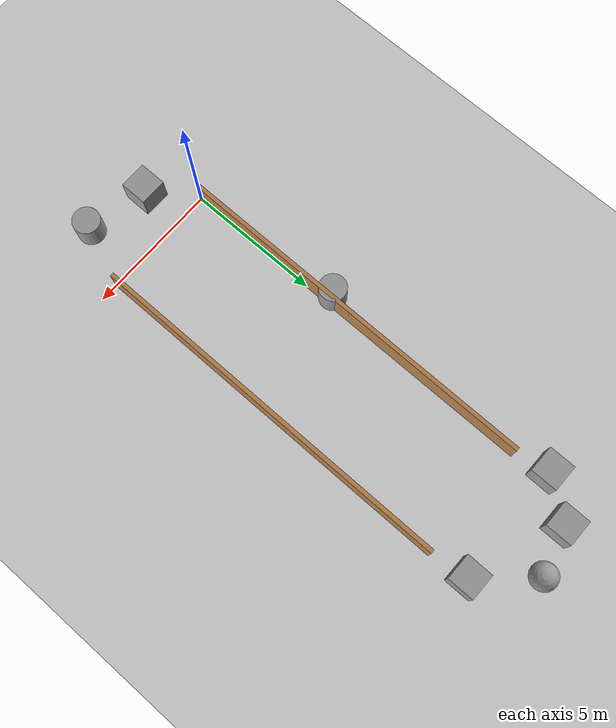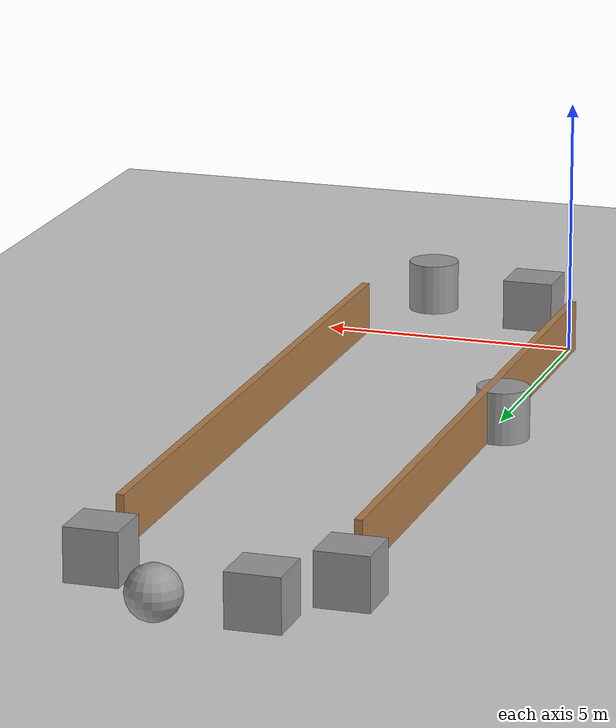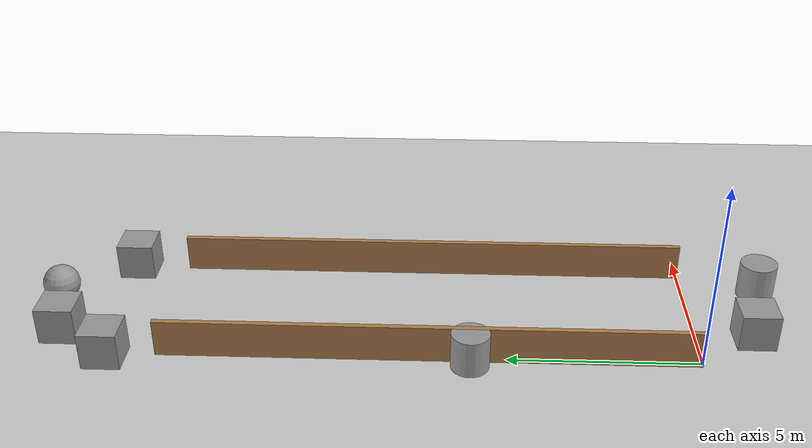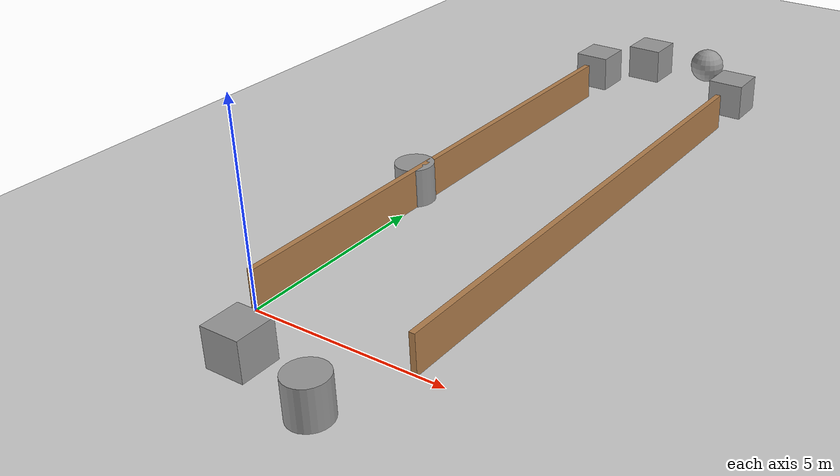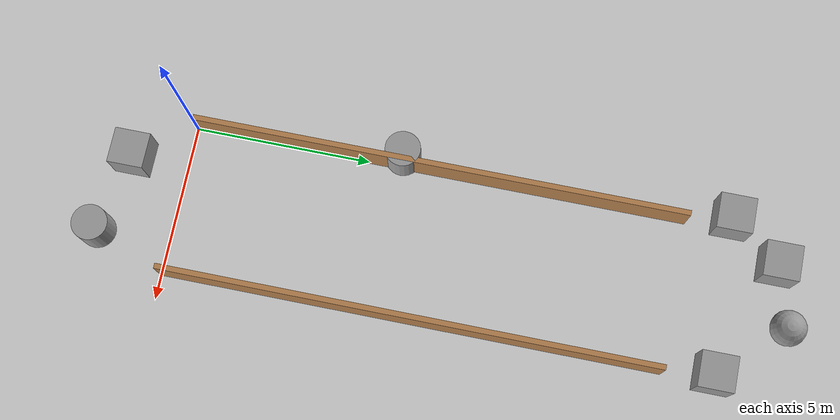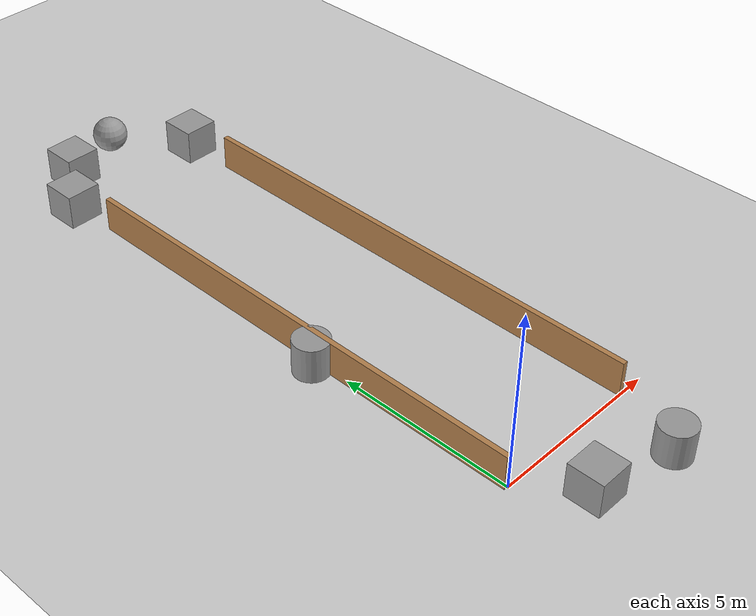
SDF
<sdf version="1.7">
 <world name="default">
  <light name="sun" type="directional">
   <pose>0 0 10 0 -0 0</pose>
   <diffuse>0.8 0.8 0.8 1</diffuse>
   <specular>0.2 0.2 0.2 1</specular>
   <attenuation>
    <range>1000</range>
    <constant>0.9</constant>
    <linear>0.01</linear>
    <quadratic>0.001</quadratic>
   </attenuation>
   <direction>-0.5 0.1 -0.9</direction>
   <spot><inner_angle>0</inner_angle><outer_angle>0</outer_angle><falloff>0</falloff></spot>
  </light>
  <model name="ground_plane">
   <static>1</static>
   <link name="link">
    <collision name="collision">
     <geometry><plane><normal>0 0 1</normal><size>100 100</size></plane></geometry>
     <surface><friction><ode><mu>100</mu><mu2>50</mu2></ode></friction></surface>
    </collision>
    <visual name="visual">
     <cast_shadows>0</cast_shadows>
     <geometry><plane><normal>0 0 1</normal><size>100 100</size></plane></geometry>
     <material>
      <script><uri>file://media/materials/scripts/gazebo.material</uri><name>Gazebo/Grey</name></script>
     </material>
    </visual>
   </link>
  </model>
  <gravity>0 0 -9.8</gravity>
  <magnetic_field>6e-06 2.3e-05 -4.2e-05</magnetic_field>
  <atmosphere type="adiabatic"/>
  <physics type="ode">
   <max_step_size>0.001</max_step_size>
   <real_time_factor>1</real_time_factor>
   <real_time_update_rate>1000</real_time_update_rate>
  </physics>
  <scene><ambient>0.4 0.4 0.4 1</ambient><background>0.7 0.7 0.7 1</background><shadows>1</shadows></scene>
  <spherical_coordinates>
   <surface_model>EARTH_WGS84</surface_model>
   <latitude_deg>0</latitude_deg>
   <longitude_deg>0</longitude_deg>
   <elevation>0</elevation>
   <heading_deg>0</heading_deg>
  </spherical_coordinates>
  <model name="wall">
   <pose>5.78927 7.00637 0 0 -0 0</pose>
   <link name="Wall_3">
    <collision name="Wall_3_Collision">
     <geometry><box><size>14 0.15 1</size></box></geometry>
     <pose>0 0 0.5 0 -0 0</pose>
    </collision>
    <visual name="Wall_3_Visual">
     <pose>0 0 0.5 0 -0 0</pose>
     <geometry><box><size>14 0.15 1</size></box></geometry>
     <material>
      <script><uri>file://media/materials/scripts/gazebo.material</uri><name>Gazebo/Wood</name></script>
      <ambient>1 1 1 1</ambient>
     </material>
     <meta><layer>0</layer></meta>
    </visual>
    <pose>-5.8385 0 0 0 -0 -1.5708</pose>
   </link>
   <static>1</static>
  </model>
  <model name="wall_0">
   <pose>10.0925 6.99402 0 0 -0 0</pose>
   <link name="Wall_3">
    <collision name="Wall_3_Collision">
     <geometry><box><size>14 0.15 1</size></box></geometry>
     <pose>0 0 0.5 0 -0 0</pose>
    </collision>
    <visual name="Wall_3_Visual">
     <pose>0 0 0.5 0 -0 0</pose>
     <geometry><box><size>14 0.15 1</size></box></geometry>
     <material>
      <script><uri>file://media/materials/scripts/gazebo.material</uri><name>Gazebo/Wood</name></script>
      <ambient>1 1 1 1</ambient>
     </material>
     <meta><layer>0</layer></meta>
    </visual>
    <pose>-5.8385 0 0 0 -0 -1.5708</pose>
   </link>
   <static>1</static>
  </model>
  <model name="unit_box">
   <pose>1.15924 -1.51932 0.5 0 -0 0</pose>
   <link name="link">
    <inertial>
     <mass>1</mass>
     <inertia>
      <ixx>0.166667</ixx>
      <ixy>0</ixy>
      <ixz>0</ixz>
      <iyy>0.166667</iyy>
      <iyz>0</iyz>
      <izz>0.166667</izz>
     </inertia>
    </inertial>
    <collision name="collision"><geometry><box><size>1 1 1</size></box></geometry></collision>
    <visual name="visual">
     <geometry><box><size>1 1 1</size></box></geometry>
     <material>
      <script><name>Gazebo/Grey</name><uri>file://media/materials/scripts/gazebo.material</uri></script>
     </material>
    </visual>
   </link>
  </model>
  <model name="unit_cylinder">
   <pose>3.42558 -2.03905 0.499992 -3e-06 3e-06 0</pose>
   <link name="link">
    <inertial>
     <mass>1</mass>
     <inertia><ixx>0.145833</ixx><ixy>0</ixy><ixz>0</ixz><iyy>0.145833</iyy><iyz>0</iyz><izz>0.125</izz></inertia>
    </inertial>
    <collision name="collision">
     <geometry><cylinder><radius>0.5</radius><length>1</length></cylinder></geometry>
    </collision>
    <visual name="visual">
     <geometry><cylinder><radius>0.5</radius><length>1</length></cylinder></geometry>
     <material>
      <script><name>Gazebo/Grey</name><uri>file://media/materials/scripts/gazebo.material</uri></script>
     </material>
    </visual>
   </link>
  </model>
  <model name="unit_box_0">
   <pose>0.761847 16.6543 0.5 0 -0 0</pose>
   <link name="link">
    <inertial>
     <mass>1</mass>
     <inertia>
      <ixx>0.166667</ixx>
      <ixy>0</ixy>
      <ixz>0</ixz>
      <iyy>0.166667</iyy>
      <iyz>0</iyz>
      <izz>0.166667</izz>
     </inertia>
    </inertial>
    <collision name="collision"><geometry><box><size>1 1 1</size></box></geometry></collision>
    <visual name="visual">
     <geometry><box><size>1 1 1</size></box></geometry>
     <material>
      <script><name>Gazebo/Grey</name><uri>file://media/materials/scripts/gazebo.material</uri></script>
     </material>
    </visual>
   </link>
  </model>
  <model name="unit_box_1">
   <pose>-0.309304 15.2329 0.5 -0 -0 -0</pose>
   <link name="link">
    <inertial>
     <mass>1</mass>
     <inertia>
      <ixx>0.166667</ixx>
      <ixy>0</ixy>
      <ixz>0</ixz>
      <iyy>0.166667</iyy>
      <iyz>0</iyz>
      <izz>0.166667</izz>
     </inertia>
    </inertial>
    <collision name="collision"><geometry><box><size>1 1 1</size></box></geometry></collision>
    <visual name="visual">
     <geometry><box><size>1 1 1</size></box></geometry>
     <material>
      <script><name>Gazebo/Grey</name><uri>file://media/materials/scripts/gazebo.material</uri></script>
     </material>
    </visual>
   </link>
  </model>
  <model name="unit_box_2">
   <pose>4.08158 15.3674 0.5 0 -0 0</pose>
   <link name="link">
    <inertial>
     <mass>1</mass>
     <inertia>
      <ixx>0.166667</ixx>
      <ixy>0</ixy>
      <ixz>0</ixz>
      <iyy>0.166667</iyy>
      <iyz>0</iyz>
      <izz>0.166667</izz>
     </inertia>
    </inertial>
    <collision name="collision"><geometry><box><size>1 1 1</size></box></geometry></collision>
    <visual name="visual">
     <geometry><box><size>1 1 1</size></box></geometry>
     <material>
      <script><name>Gazebo/Grey</name><uri>file://media/materials/scripts/gazebo.material</uri></script>
     </material>
    </visual>
   </link>
  </model>
  <model name="unit_sphere">
   <pose>2.47578 17.1477 0.5 0 -0 0</pose>
   <link name="link">
    <inertial>
     <mass>1</mass>
     <inertia><ixx>0.1</ixx><ixy>0</ixy><ixz>0</ixz><iyy>0.1</iyy><iyz>0</iyz><izz>0.1</izz></inertia>
    </inertial>
    <collision name="collision"><geometry><sphere><radius>0.5</radius></sphere></geometry></collision>
    <visual name="visual">
     <geometry><sphere><radius>0.5</radius></sphere></geometry>
     <material>
      <script><name>Gazebo/Grey</name><uri>file://media/materials/scripts/gazebo.material</uri></script>
     </material>
    </visual>
   </link>
  </model>
  <model name="unit_cylinder_0">
   <pose>-0.299158 5.91403 0.499998 3e-06 -4e-06 0</pose>
   <link name="link">
    <inertial>
     <mass>1</mass>
     <inertia><ixx>0.145833</ixx><ixy>0</ixy><ixz>0</ixz><iyy>0.145833</iyy><iyz>0</iyz><izz>0.125</izz></inertia>
    </inertial>
    <collision name="collision">
     <geometry><cylinder><radius>0.5</radius><length>1</length></cylinder></geometry>
    </collision>
    <visual name="visual">
     <geometry><cylinder><radius>0.5</radius><length>1</length></cylinder></geometry>
     <material>
      <script><name>Gazebo/Grey</name><uri>file://media/materials/scripts/gazebo.material</uri></script>
     </material>
    </visual>
   </link>
  </model>
 </world>
</sdf>
